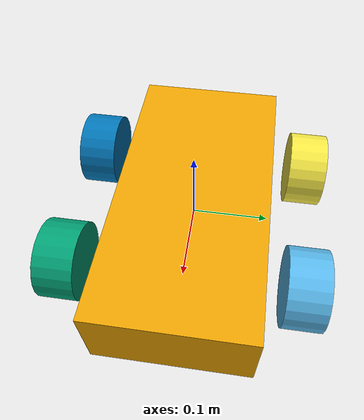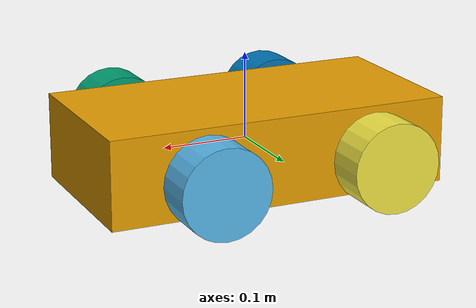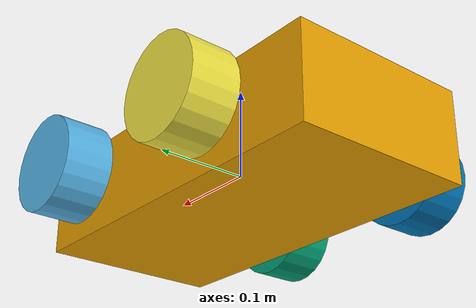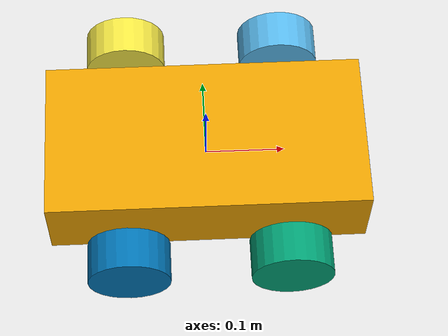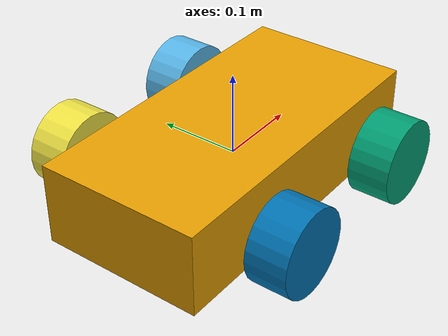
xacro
<?xml version='1.0'?>

<robot name="myrobot" xmlns:xacro="http://www.ros.org/wiki/xacro">

  <xacro:include filename="$(find mybot_description)/urdf/materials.xacro" />
  <xacro:include filename="$(find mybot_description)/urdf/macros.xacro" />

  <link name='chassis'>
    <pose>0 0 0.1 0 0 0</pose>

    <inertial>
      <mass value="10.0"/>
      <origin xyz="0.0 0 0.1" rpy=" 0 0 0"/>
      <inertia
          ixx="0.5" ixy="0" ixz="0"
          iyy="1.0" iyz="0"
          izz="0.1"
      />
    </inertial>

    <collision name='collision'>
      <geometry>
        <box size=".4 .2 .1"/>
      </geometry>
    </collision>

    <visual name='chassis_visual'>
      <origin xyz="0 0 0" rpy=" 0 0 0"/>
      <geometry>
        <box size=".4 .2 .1"/>
      </geometry>
    </visual>
  </link>

  <link name="left_wheel_f">
    <!--origin xyz="0.1 0.13 0.1" rpy="0 1.5707 1.5707"/-->
    <collision name="collision">
      <origin xyz="0 0 0" rpy="0 1.5707 1.5707"/>
      <geometry>
        <cylinder radius="0.051" length="0.05"/>
      </geometry>
    </collision>
    <visual name="left_wheel_visual">
      <origin xyz="0 0 0" rpy="0 1.5707 1.5707"/>
      <geometry>
        <cylinder radius="0.051" length="0.05"/>
      </geometry>
    </visual>
    <inertial>
      <origin xyz="0 0 0" rpy="0 1.5707 1.5707"/>
      <mass value="5"/>
      <cylinder_inertia m="5" r="0.1" h="0.05"/>
      <inertia
        ixx="1.0" ixy="0.0" ixz="0.0"
        iyy="1.0" iyz="0.0"
        izz="1.0"/>
    </inertial>
  </link>

  <link name="right_wheel_f">
    <!--origin xyz="0.1 -0.13 0.1" rpy="0 1.5707 1.5707"/-->
    <collision name="collision">
      <origin xyz="0 0 0" rpy="0 1.5707 1.5707"/>
      <geometry>
        <cylinder radius="0.051" length="0.05"/>
      </geometry>
    </collision>
    <visual name="right_wheel_visual">
      <origin xyz="0 0 0" rpy="0 1.5707 1.5707"/>
      <geometry>
        <cylinder radius="0.051" length="0.05"/>
      </geometry>
    </visual>
    <inertial>
      <origin xyz="0 0 0" rpy="0 1.5707 1.5707"/>
      <mass value="5"/>
      <cylinder_inertia m="5" r="0.1" h="0.05"/>
      <inertia
        ixx="1.0" ixy="0.0" ixz="0.0"
        iyy="1.0" iyz="0.0"
        izz="1.0"/>
    </inertial>
  </link>

  <link name="left_wheel_b">
    <!--origin xyz="0.1 0.13 0.1" rpy="0 1.5707 1.5707"/-->
    <collision name="collision">
      <origin xyz="0 0 0" rpy="0 1.5707 1.5707"/>
      <geometry>
        <cylinder radius="0.051" length="0.05"/>
      </geometry>
    </collision>
    <visual name="left_wheel_visual">
      <origin xyz="0 0 0" rpy="0 1.5707 1.5707"/>
      <geometry>
        <cylinder radius="0.051" length="0.05"/>
      </geometry>
    </visual>
    <inertial>
      <origin xyz="0 0 0" rpy="0 1.5707 1.5707"/>
      <mass value="5"/>
      <cylinder_inertia m="5" r="0.1" h="0.05"/>
      <inertia
        ixx="1.0" ixy="0.0" ixz="0.0"
        iyy="1.0" iyz="0.0"
        izz="1.0"/>
    </inertial>
  </link>

  <link name="right_wheel_b">
    <!--origin xyz="0.1 -0.13 0.1" rpy="0 1.5707 1.5707"/-->
    <collision name="collision">
      <origin xyz="0 0 0" rpy="0 1.5707 1.5707"/>
      <geometry>
        <cylinder radius="0.051" length="0.05"/>
      </geometry>
    </collision>
    <visual name="right_wheel_visual">
      <origin xyz="0 0 0" rpy="0 1.5707 1.5707"/>
      <geometry>
        <cylinder radius="0.051" length="0.05"/>
      </geometry>
    </visual>
    <inertial>
      <origin xyz="0 0 0" rpy="0 1.5707 1.5707"/>
      <mass value="5"/>
      <cylinder_inertia m="5" r="0.1" h="0.05"/>
      <inertia
        ixx="1.0" ixy="0.0" ixz="0.0"
        iyy="1.0" iyz="0.0"
        izz="1.0"/>
    </inertial>
  </link>

  <joint type="continuous" name="left_wheel_hinge_f">
    <origin xyz="0.1 0.15 0" rpy="0 0 0"/>
    <child link="left_wheel_f"/>
    <parent link="chassis"/>
    <axis xyz="0 1 0" rpy="0 0 0"/>
    <limit effort="100" velocity="100"/>
    <joint_properties damping="0.0" friction="0.0"/>
  </joint>

  <joint type="continuous" name="right_wheel_hinge_f">
    <origin xyz="0.1 -0.15 0" rpy="0 0 0"/>
    <child link="right_wheel_f"/>
    <parent link="chassis"/>
    <axis xyz="0 1 0" rpy="0 0 0"/>
    <limit effort="100" velocity="100"/>
    <joint_properties damping="0.0" friction="0.0"/>
  </joint>

  <joint type="continuous" name="left_wheel_hinge_b">
    <origin xyz="-0.1 0.15 0" rpy="0 0 0"/>
    <child link="left_wheel_b"/>
    <parent link="chassis"/>
    <axis xyz="0 1 0" rpy="0 0 0"/>
    <limit effort="100" velocity="100"/>
    <joint_properties damping="0.0" friction="0.0"/>
  </joint>

  <joint type="continuous" name="right_wheel_hinge_b">
    <origin xyz="-0.1 -0.15 0" rpy="0 0 0"/>
    <child link="right_wheel_b"/>
    <parent link="chassis"/>
    <axis xyz="0 1 0" rpy="0 0 0"/>
    <limit effort="100" velocity="100"/>
    <joint_properties damping="0.0" friction="0.0"/>
  </joint>

<gazebo>
    <plugin name="gazebo_ros_control" filename="libgazebo_ros_control.so">
      <robotNamespace>/</robotNamespace>
      <robotSimType>steer_bot_hardware_gazebo/SteerBotHardwareGazebo</robotSimType>
    </plugin>
  </gazebo>

</robot>
